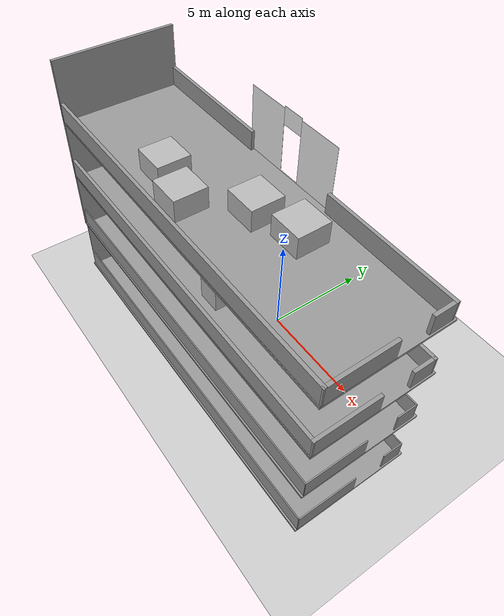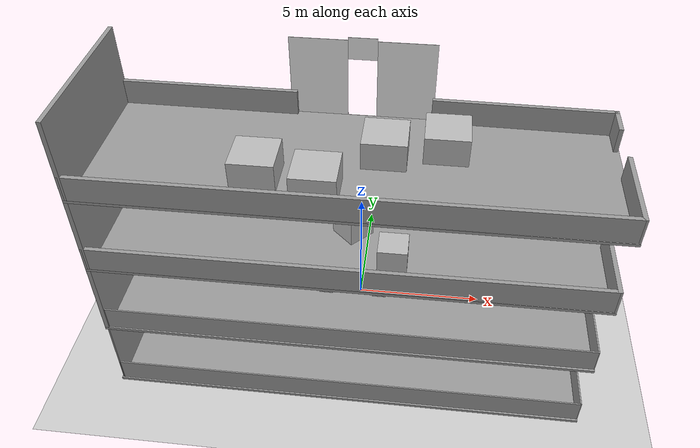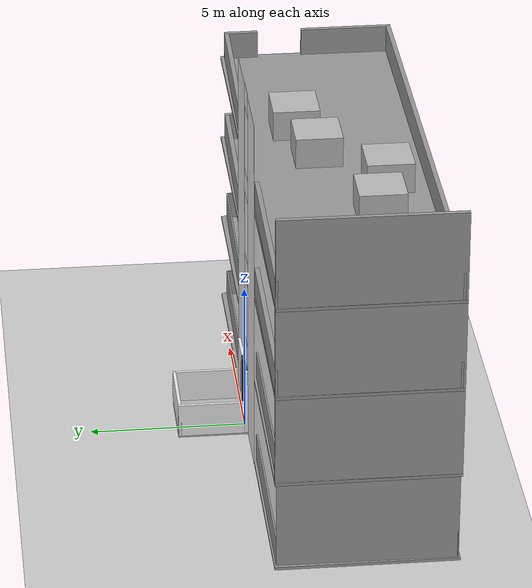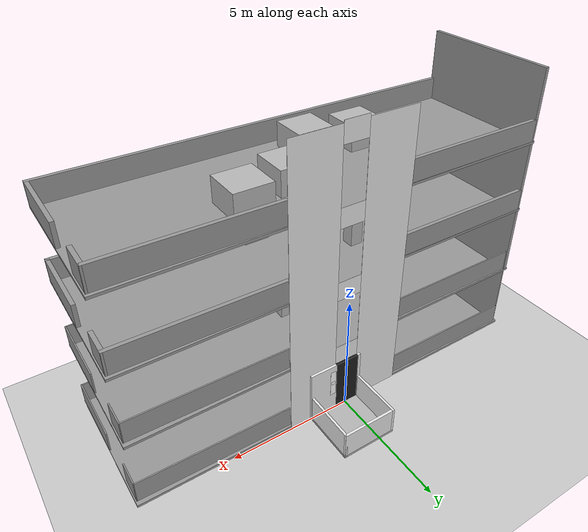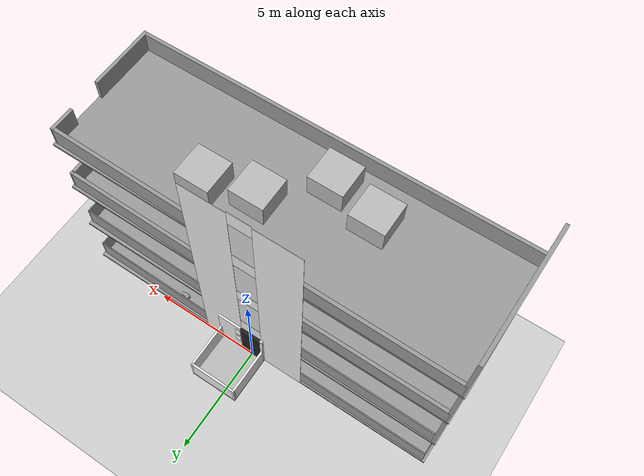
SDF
<sdf version="1.6">
 <world name="default">
  <include><uri>model://ground_plane</uri></include>
  <include><uri>model://sun</uri></include>
  <plugin name="actor_pose_plugin" filename="libActorPosePlugin.so"><update_rate>10.0</update_rate></plugin>
  <include>
   <uri>file:///home/achiraubuntu/navigation_ws/src/gazebo_elevator_plugin/model/multifloor_building</uri>
   <pose>0 -2.90 0 0 0 0</pose>
  </include>
  <include>
   <uri>file:///home/achiraubuntu/navigation_ws/src/gazebo_elevator_plugin/model/objects</uri>
   <pose>0 -2.90 0 0 0 0</pose>
  </include>
  <model name="sliding_boxes">
   <link name="level01_support">
    <pose>0 -0.055 2.7 0 0 0</pose>
    <visual name="support01_visual">
     <geometry><box><size>1.0 0.01 0.8</size></box></geometry>
     <material>
      <script><uri>file://media/materials/scripts/gazebo.material</uri><name>Gazebo/White</name></script>
     </material>
    </visual>
   </link>
   <link name="level02_support">
    <pose>0 -0.055 5.7 0 0 0</pose>
    <visual name="support02_visual">
     <geometry><box><size>1.0 0.01 0.8</size></box></geometry>
     <material>
      <script><uri>file://media/materials/scripts/gazebo.material</uri><name>Gazebo/White</name></script>
     </material>
    </visual>
   </link>
   <link name="level03_support">
    <pose>0 -0.055 8.7 0 0 0</pose>
    <visual name="support03_visual">
     <geometry><box><size>1.0 0.01 0.8</size></box></geometry>
     <material>
      <script><uri>file://media/materials/scripts/gazebo.material</uri><name>Gazebo/White</name></script>
     </material>
    </visual>
   </link>
   <link name="level04_support">
    <pose>0 -0.055 11.7 0 0 0</pose>
    <visual name="support04_visual">
     <geometry><box><size>1.0 0.01 0.8</size></box></geometry>
     <material>
      <script><uri>file://media/materials/scripts/gazebo.material</uri><name>Gazebo/White</name></script>
     </material>
    </visual>
    <collision name="support04_collision"><geometry><box><size>1.0 0.01 0.95</size></box></geometry></collision>
   </link>
   <link name="front_wall_right">
    <pose>1.5 -0.055 6 0 0 0</pose>
    <visual name="front_wall_right_visual">
     <geometry><box><size>2 0.01 12</size></box></geometry>
     <material>
      <script><uri>file://media/materials/scripts/gazebo.material</uri><name>Gazebo/White</name></script>
     </material>
    </visual>
    <collision name="front_wall_right_collision">
     <geometry><box><size>2 0.01 12</size></box></geometry>
    </collision>
   </link>
   <link name="front_wall_left">
    <pose>-1.5 -0.055 6 0 0 0</pose>
    <visual name="front_wall_left_visual">
     <geometry><box><size>2 0.01 12</size></box></geometry>
     <material>
      <script><uri>file://media/materials/scripts/gazebo.material</uri><name>Gazebo/White</name></script>
     </material>
    </visual>
    <collision name="front_wall_left_collision"><geometry><box><size>2 0.01 12</size></box></geometry></collision>
   </link>
   <link name="base"/>
   <joint name="connector" type="fixed"><parent>base</parent><child>Floor_6</child></joint>
   <joint name="joint_front_wall_left" type="fixed">
    <parent>level03_support</parent>
    <child>front_wall_left</child>
   </joint>
   <joint name="joint_front_wall_right" type="fixed">
    <parent>level03_support</parent>
    <child>front_wall_right</child>
   </joint>
   <joint name="joint_level01_support" type="fixed">
    <parent>base</parent>
    <child>level01_support</child>
    <pose>0 0 4.1 0 0 0</pose>
   </joint>
   <joint name="joint_level02_support" type="fixed">
    <parent>base</parent>
    <child>level02_support</child>
    <pose>0 0 7.1 0 0 0</pose>
   </joint>
   <joint name="joint_level03_support" type="fixed">
    <parent>base</parent>
    <child>level03_support</child>
    <pose>0 0 10.1 0 0 0</pose>
   </joint>
   <joint name="joint_level04_support" type="fixed">
    <parent>base</parent>
    <child>level04_support</child>
    <pose>0 0 13.1 0 0 0</pose>
   </joint>
  </model>
  <model name="elevator">
   <pose>0.5 1.08 0.05 0 0 -1.5708</pose>
   <link name="link">
    <inertial><mass>800</mass></inertial>
    <collision name="floor_collision"><geometry><box><size>2.25 2.25 0.1</size></box></geometry></collision>
    <visual name="floor_visual"><geometry><box><size>2.25 2.25 0.1</size></box></geometry></visual>
    <collision name="wall1_collision">
     <pose>1.0745 0.5725 1.125 0 0 0</pose>
     <geometry><box><size>0.1 1.15 2.25</size></box></geometry>
    </collision>
    <visual name="wall1_visual">
     <pose>1.0745 0.5725 1.125 0 0 0</pose>
     <geometry><box><size>0.1 1.15 2.25</size></box></geometry>
     <material><script><name>Gazebo/White</name></script></material>
    </visual>
    <collision name="wall2_collision">
     <pose>1.0745 -1.0625 1.125 0 0 0</pose>
     <geometry><box><size>0.1 0.125 2.25</size></box></geometry>
    </collision>
    <visual name="wall2_visual">
     <pose>1.0745 -1.0625 1.125 0 0 0</pose>
     <geometry><box><size>0.1 0.125 2.25</size></box></geometry>
     <material><script><name>Gazebo/White</name></script></material>
    </visual>
    <collision name="wall_left_collision">
     <pose>0 -1.075 0.5625 0 0 0</pose>
     <geometry><box><size>2.25 0.1 1.125</size></box></geometry>
    </collision>
    <visual name="wall_left_visual">
     <pose>0 -1.075 0.5625 0 0 0</pose>
     <geometry><box><size>2.25 0.1 1.125</size></box></geometry>
     <material><script><name>Gazebo/White</name></script></material>
    </visual>
    <collision name="wall_right_collision">
     <pose>0 1.075 0.5625 0 0 0</pose>
     <geometry><box><size>2.25 0.1 1.125</size></box></geometry>
    </collision>
    <visual name="wall_right_visual">
     <pose>0 1.075 0.5625 0 0 0</pose>
     <geometry><box><size>2.25 0.1 1.125</size></box></geometry>
     <material><script><name>Gazebo/White</name></script></material>
    </visual>
    <collision name="wall_rear_collision">
     <pose>-1.075 0 0.5625 0 0 0</pose>
     <geometry><box><size>0.1 2.25 1.125</size></box></geometry>
    </collision>
    <visual name="wall_rear_visual">
     <pose>-1.075 0 0.5625 0 0 0</pose>
     <geometry><box><size>0.1 2.25 1.125</size></box></geometry>
     <material><script><name>Gazebo/White</name></script></material>
    </visual>
    <visual name="button_panel_floor01_in_visual">
     <pose>1.0225 0.15 1.40 0 0 0</pose>
     <geometry><box><size>0.004 0.25 1.16</size></box></geometry>
     <material>
      <ambient>1 1 1 1</ambient>
      <diffuse>1 1 1 1</diffuse>
      <specular>0.1 0.1 0.1 1</specular>
      <emissive>0.5 0.5 0.5 1</emissive>
      <lighting>1</lighting>
      <script>
       <uri>file:///home/achiraubuntu/navigation_ws/src/gazebo_elevator_plugin/model/moving_joint_model/materials/scripts</uri>
       <uri>file:///home/achiraubuntu/navigation_ws/src/gazebo_elevator_plugin/model/moving_joint_model/materials/textures</uri>
       <name>ButtonPanelFloor02In</name>
      </script>
     </material>
    </visual>
    <visual name="apriltag_elevator_interior">
     <pose>1.0200 0.15 1.40 0 0 0</pose>
     <geometry><box><size>0.001 0.15 0.15</size></box></geometry>
     <material>
      <ambient>1 1 1 1</ambient>
      <diffuse>1 1 1 1</diffuse>
      <specular>0.0 0.0 0.0 1</specular>
      <emissive>0.1 0.1 0.1 1</emissive>
      <lighting>1</lighting>
      <script>
       <uri>file:///home/achiraubuntu/navigation_ws/src/gazebo_elevator_plugin/model/Apriltag36_11_00000/materials/scripts</uri>
       <uri>file:///home/achiraubuntu/navigation_ws/src/gazebo_elevator_plugin/model/Apriltag36_11_00000/materials/textures</uri>
       <name>Apriltag36_11_00000</name>
      </script>
     </material>
    </visual>
   </link>
   <link name="door">
    <pose>1.0745 -0.5 1.125 0 0 0</pose>
    <collision name="collision"><geometry><box><size>0.08 1.0 2.25</size></box></geometry></collision>
    <visual name="visual">
     <geometry><box><size>0.08 1.0 2.25</size></box></geometry>
     <material><script><name>Gazebo/Black</name></script></material>
    </visual>
   </link>
   <joint name="door" type="prismatic">
    <parent>link</parent>
    <child>door</child>
    <axis>
     <xyz>0 1 0</xyz>
     <limit><lower>0</lower><upper>1</upper><effort>10</effort></limit>
     <dynamics><damping>2</damping></dynamics>
    </axis>
   </joint>
   <joint name="lift" type="prismatic">
    <parent>world</parent>
    <child>link</child>
    <axis>
     <xyz>0 0 1</xyz>
     <limit><lower>0</lower><upper>10</upper><effort>100000</effort></limit>
     <dynamics><damping>50</damping></dynamics>
    </axis>
    <physics><ode><implicit_spring_damper>1</implicit_spring_damper></ode></physics>
   </joint>
   <plugin filename="libCustomElevatorPlugin.so" name="custom_elevator_plugin">
    <lift_joint>elevator::lift</lift_joint>
    <door_joint>elevator::door</door_joint>
    <floor_height>3.0</floor_height>
    <floor_offset>0.078</floor_offset>
    <door_wait_time>10</door_wait_time>
    <topic>~/elevator</topic>
   </plugin>
  </model>
  <model name="docking_station">
   <static>1</static>
   <link name="docking_station_base_link">
    <inertial>
     <mass>100</mass>
     <inertia><ixx>1</ixx><ixy>0</ixy><ixz>0</ixz><iyy>1</iyy><iyz>0</iyz><izz>1</izz></inertia>
    </inertial>
    <collision name="docking_station_base_link_collision">
     <geometry>
      <mesh>
       <scale>0.001 0.001 0.001</scale>
       <uri>file:///home/achiraubuntu/navigation_ws/src/smrr_description/meshes/Docking_station_assembly.STL</uri>
      </mesh>
     </geometry>
    </collision>
    <visual name="docking_station_base_link_visual">
     <geometry>
      <mesh>
       <scale>0.001 0.001 0.001</scale>
       <uri>file:///home/achiraubuntu/navigation_ws/src/smrr_description/meshes/Docking_station_assembly.STL</uri>
      </mesh>
     </geometry>
     <material>
      <script><name>Gazebo/Grey</name><uri>file://media/materials/scripts/gazebo.material</uri></script>
     </material>
    </visual>
    <visual name="apriltag_marker">
     <pose>0.091 0.35 -0.018 0 0 1.5708</pose>
     <geometry><box><size>0.2 0.2 0.001</size></box></geometry>
     <material>
      <ambient>1 1 1 1</ambient>
      <diffuse>1 1 1 1</diffuse>
      <specular>0.1 0.1 0.1 1</specular>
      <emissive>0.2 0.2 0.2 1</emissive>
      <lighting>1</lighting>
      <script>
       <uri>file:///home/achiraubuntu/navigation_ws/src/gazebo_elevator_plugin/model/Apriltag36_11_00000/materials/scripts</uri>
       <uri>file:///home/achiraubuntu/navigation_ws/src/gazebo_elevator_plugin/model/Apriltag36_11_00000/materials/textures</uri>
       <name>Apriltag36_11_00000</name>
      </script>
     </material>
    </visual>
   </link>
   <pose>4 -0.4 0.1 1.5708 0 0</pose>
  </model>
  <model name="button_panel_floor01_out">
   <static>true</static>
   <link name="panel_link">
    <pose>-0.625 -0.082 1.40 0 0 0</pose>
    <visual name="panel_visual">
     <geometry><box><size>0.25 0.004 1.16</size></box></geometry>
     <material>
      <ambient>1 1 1 1</ambient>
      <diffuse>1 1 1 1</diffuse>
      <specular>0.1 0.1 0.1 1</specular>
      <emissive>0.5 0.5 0.5 1</emissive>
      <lighting>1</lighting>
      <script>
       <uri>file:///home/achiraubuntu/navigation_ws/src/gazebo_elevator_plugin/model/moving_joint_model/materials/scripts</uri>
       <uri>file:///home/achiraubuntu/navigation_ws/src/gazebo_elevator_plugin/model/moving_joint_model/materials/textures</uri>
       <name>ButtonPanelFloor01Out</name>
      </script>
     </material>
    </visual>
   </link>
  </model>
 </world>
</sdf>

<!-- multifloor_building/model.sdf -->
<sdf version='1.7'>
  <model name='multifloor_building'>
    <pose>-0.127322 -2.87339 0 0 -0 0</pose>
    <link name='Floor_0'>
      <collision name='Floor_0_Collision'>
        <geometry>
          <box>
            <size>17.4048 5.71356 0.1</size>
          </box>
        </geometry>
        <pose>0 0 0.05 0 -0 0</pose>
      </collision>
      <visual name='Floor_0_Visual'>
        <pose>0 0 0.05 0 -0 0</pose>
        <geometry>
          <box>
            <size>17.4048 5.71356 0.1</size>
          </box>
        </geometry>
        <material>
          <script>
            <uri>file://media/materials/scripts/gazebo.material</uri>
            <name>Gazebo/Grey</name>
          </script>
          <ambient>1 1 1 1</ambient>
        </material>
        <meta>
          <layer>0</layer>
        </meta>
      </visual>
      <pose>-0.025045 -0.016611 0 0 -0 0</pose>
    </link>
    <link name='Floor_6'>
      <collision name='Floor_6_Collision'>
        <geometry>
          <box>
            <size>17.4048 5.71356 0.1</size>
          </box>
        </geometry>
        <pose>0 0 0.05 0 -0 0</pose>
      </collision>
      <visual name='Floor_6_Visual'>
        <pose>0 0 0.05 0 -0 0</pose>
        <geometry>
          <box>
            <size>17.4048 5.71356 0.1</size>
          </box>
        </geometry>
        <material>
          <script>
            <uri>file://media/materials/scripts/gazebo.material</uri>
            <name>Gazebo/Grey</name>
          </script>
          <ambient>1 1 1 1</ambient>
        </material>
        <meta>
          <layer>1</layer>
        </meta>
      </visual>
      <pose>-0.025045 -0.016611 3.0 0 -0 0</pose>
    </link>
    <link name='Floor_8'>
      <collision name='Floor_8_Collision'>
        <geometry>
          <box>
            <size>17.4549 5.71356 0.1</size>
          </box>
        </geometry>
        <pose>0 0 0.05 0 -0 0</pose>
      </collision>
      <visual name='Floor_8_Visual'>
        <pose>0 0 0.05 0 -0 0</pose>
        <geometry>
          <box>
            <size>17.4549 5.71356 0.1</size>
          </box>
        </geometry>
        <material>
          <script>
            <uri>file://media/materials/scripts/gazebo.material</uri>
            <name>Gazebo/Grey</name>
          </script>
          <ambient>1 1 1 1</ambient>
        </material>
        <meta>
          <layer>2</layer>
        </meta>
      </visual>
      <pose>-0 -0.016611 6.0 0 -0 0</pose>
    </link>
    <link name='Floor_9'>
      <collision name='Floor_9_Collision'>
        <geometry>
          <box>
            <size>17.4549 5.71356 0.1</size>
          </box>
        </geometry>
        <pose>0 0 0.05 0 -0 0</pose>
      </collision>
      <visual name='Floor_9_Visual'>
        <pose>0 0 0.05 0 -0 0</pose>
        <geometry>
          <box>
            <size>17.4549 5.71356 0.1</size>
          </box>
        </geometry>
        <material>
          <script>
            <uri>file://media/materials/scripts/gazebo.material</uri>
            <name>Gazebo/Grey</name>
          </script>
          <ambient>1 1 1 1</ambient>
        </material>
        <meta>
          <layer>3</layer>
        </meta>
      </visual>
      <pose>-0 -0.016611 9.0 0 -0 0</pose>
    </link>
    <link name='Wall_11'>
      <collision name='Wall_11_Collision'>
        <geometry>
          <box>
            <size>6.1448 0.05 1</size>
          </box>
        </geometry>
        <pose>0 0 0.5 0 -0 0</pose>
      </collision>
      <visual name='Wall_11_Visual'>
        <pose>0 0 0.5 0 -0 0</pose>
        <geometry>
          <box>
            <size>6.1448 0.05 1</size>
          </box>
        </geometry>
        <material>
          <script>
            <uri>file://media/materials/scripts/gazebo.material</uri>
            <name>Gazebo/Grey</name>
          </script>
          <ambient>1 1 1 1</ambient>
        </material>
        <meta>
          <layer>0</layer>
        </meta>
      </visual>
      <pose>5.55323 2.68693 0 0 -0 3.1273</pose>
    </link>
    <link name='Wall_13'>
      <collision name='Wall_13_Collision'>
        <geometry>
          <box>
            <size>2.9 0.05 1</size>
          </box>
        </geometry>
        <pose>0 0 0.5 0 -0 0</pose>
      </collision>
      <visual name='Wall_13_Visual'>
        <pose>0 0 0.5 0 -0 0</pose>
        <geometry>
          <box>
            <size>2.9 0.05 1</size>
          </box>
        </geometry>
        <material>
          <script>
            <uri>file://media/materials/scripts/gazebo.material</uri>
            <name>Gazebo/Grey</name>
          </script>
          <ambient>1 1 1 1</ambient>
        </material>
        <meta>
          <layer>0</layer>
        </meta>
      </visual>
      <pose>8.65232 -1.34161 0 0 -0 1.5708</pose>
    </link>
    <link name='Wall_15'>
      <collision name='Wall_15_Collision'>
        <geometry>
          <box>
            <size>1 0.05 1</size>
          </box>
        </geometry>
        <pose>0 0 0.5 0 -0 0</pose>
      </collision>
      <visual name='Wall_15_Visual'>
        <pose>0 0 0.5 0 -0 0</pose>
        <geometry>
          <box>
            <size>1 0.05 1</size>
          </box>
        </geometry>
        <material>
          <script>
            <uri>file://media/materials/scripts/gazebo.material</uri>
            <name>Gazebo/Grey</name>
          </script>
          <ambient>1 1 1 1</ambient>
        </material>
        <meta>
          <layer>0</layer>
        </meta>
      </visual>
      <pose>8.60032 2.16839 0 0 -0 -1.5708</pose>
    </link>
    <link name='Wall_5'>
      <collision name='Wall_5_Collision'>
        <geometry>
          <box>
            <size>6.28057 0.05 1</size>
          </box>
        </geometry>
        <pose>0 0 0.5 0 -0 0</pose>
      </collision>
      <visual name='Wall_5_Visual'>
        <pose>0 0 0.5 0 -0 0</pose>
        <geometry>
          <box>
            <size>6.28057 0.05 1</size>
          </box>
        </geometry>
        <material>
          <script>
            <uri>file://media/materials/scripts/gazebo.material</uri>
            <name>Gazebo/Grey</name>
          </script>
          <ambient>1 1 1 1</ambient>
        </material>
        <meta>
          <layer>0</layer>
        </meta>
      </visual>
      <pose>-5.45879 2.74982 0 0 -0 3.13686</pose>
    </link>
    <link name='Wall_53'>
      <collision name='Wall_53_Collision'>
        <geometry>
          <box>
            <size>6.30021 0.05 1</size>
          </box>
        </geometry>
        <pose>0 0 0.5 0 -0 0</pose>
      </collision>
      <visual name='Wall_53_Visual'>
        <pose>0 0 0.5 0 -0 0</pose>
        <geometry>
          <box>
            <size>6.30021 0.05 1</size>
          </box>
        </geometry>
        <material>
          <script>
            <uri>file://media/materials/scripts/gazebo.material</uri>
            <name>Gazebo/Grey</name>
          </script>
          <ambient>1 1 1 1</ambient>
        </material>
        <meta>
          <layer>1</layer>
        </meta>
      </visual>
      <pose>-5.46861 2.74973 3.0 0 -0 3.1369</pose>
    </link>
    <link name='Wall_54'>
      <collision name='Wall_54_Collision'>
        <geometry>
          <box>
            <size>5.7123 0.15 3</size>
          </box>
        </geometry>
        <pose>0 0 1.5 0 -0 0</pose>
      </collision>
      <visual name='Wall_54_Visual'>
        <pose>0 0 1.5 0 -0 0</pose>
        <geometry>
          <box>
            <size>5.7123 0.15 3</size>
          </box>
        </geometry>
        <material>
          <script>
            <uri>file://media/materials/scripts/gazebo.material</uri>
            <name>Gazebo/Grey</name>
          </script>
          <ambient>1 1 1 1</ambient>
        </material>
        <meta>
          <layer>1</layer>
        </meta>
      </visual>
      <pose>-8.62268 -0.016611 3.0 0 -0 -1.58122</pose>
    </link>
    <link name='Wall_55'>
      <collision name='Wall_55_Collision'>
        <geometry>
          <box>
            <size>17.354 0.05 1</size>
          </box>
        </geometry>
        <pose>0 0 0.5 0 -0 0</pose>
      </collision>
      <visual name='Wall_55_Visual'>
        <pose>0 0 0.5 0 -0 0</pose>
        <geometry>
          <box>
            <size>17.354 0.05 1</size>
          </box>
        </geometry>
        <material>
          <script>
            <uri>file://media/materials/scripts/gazebo.material</uri>
            <name>Gazebo/Grey</name>
          </script>
          <ambient>1 1 1 1</ambient>
        </material>
        <meta>
          <layer>1</layer>
        </meta>
      </visual>
      <pose>0.000322 -2.78211 3.0 0 -0 0.001791</pose>
    </link>
    <link name='Wall_56'>
      <collision name='Wall_56_Collision'>
        <geometry>
          <box>
            <size>6.1448 0.05 1</size>
          </box>
        </geometry>
        <pose>0 0 0.5 0 -0 0</pose>
      </collision>
      <visual name='Wall_56_Visual'>
        <pose>0 0 0.5 0 -0 0</pose>
        <geometry>
          <box>
            <size>6.1448 0.05 1</size>
          </box>
        </geometry>
        <material>
          <script>
            <uri>file://media/materials/scripts/gazebo.material</uri>
            <name>Gazebo/Grey</name>
          </script>
          <ambient>1 1 1 1</ambient>
        </material>
        <meta>
          <layer>1</layer>
        </meta>
      </visual>
      <pose>5.55323 2.68693 3.0 0 -0 3.1273</pose>
    </link>
    <link name='Wall_57'>
      <collision name='Wall_57_Collision'>
        <geometry>
          <box>
            <size>2.9 0.05 1</size>
          </box>
        </geometry>
        <pose>0 0 0.5 0 -0 0</pose>
      </collision>
      <visual name='Wall_57_Visual'>
        <pose>0 0 0.5 0 -0 0</pose>
        <geometry>
          <box>
            <size>2.9 0.05 1</size>
          </box>
        </geometry>
        <material>
          <script>
            <uri>file://media/materials/scripts/gazebo.material</uri>
            <name>Gazebo/Grey</name>
          </script>
          <ambient>1 1 1 1</ambient>
        </material>
        <meta>
          <layer>1</layer>
        </meta>
      </visual>
      <pose>8.65232 -1.34161 3.0 0 -0 1.5708</pose>
    </link>
    <link name='Wall_58'>
      <collision name='Wall_58_Collision'>
        <geometry>
          <box>
            <size>1 0.05 1</size>
          </box>
        </geometry>
        <pose>0 0 0.5 0 -0 0</pose>
      </collision>
      <visual name='Wall_58_Visual'>
        <pose>0 0 0.5 0 -0 0</pose>
        <geometry>
          <box>
            <size>1 0.05 1</size>
          </box>
        </geometry>
        <material>
          <script>
            <uri>file://media/materials/scripts/gazebo.material</uri>
            <name>Gazebo/Grey</name>
          </script>
          <ambient>1 1 1 1</ambient>
        </material>
        <meta>
          <layer>1</layer>
        </meta>
      </visual>
      <pose>8.60032 2.16839 3.0 0 -0 -1.5708</pose>
    </link>
    <link name='Wall_6'>
      <collision name='Wall_6_Collision'>
        <geometry>
          <box>
            <size>5.61248 0.05 3.0</size>
          </box>
        </geometry>
        <pose>0 0 1.5 0 -0 0</pose>
      </collision>
      <visual name='Wall_6_Visual'>
        <pose>0 0 1.5 0 -0 0</pose>
        <geometry>
          <box>
            <size>5.61248 0.05 3.0</size>
          </box>
        </geometry>
        <material>
          <script>
            <uri>file://media/materials/scripts/gazebo.material</uri>
            <name>Gazebo/Grey</name>
          </script>
          <ambient>1 1 1 1</ambient>
        </material>
        <meta>
          <layer>0</layer>
        </meta>
      </visual>
      <pose>-8.62292 -0.01652 0 0 -0 -1.58114</pose>
    </link>
    <link name='Wall_65'>
      <collision name='Wall_65_Collision'>
        <geometry>
          <box>
            <size>6.40021 0.15 1</size>
          </box>
        </geometry>
        <pose>0 0 0.5 0 -0 0</pose>
      </collision>
      <visual name='Wall_65_Visual'>
        <pose>0 0 0.5 0 -0 0</pose>
        <geometry>
          <box>
            <size>6.40021 0.15 1</size>
          </box>
        </geometry>
        <material>
          <script>
            <uri>file://media/materials/scripts/gazebo.material</uri>
            <name>Gazebo/Grey</name>
          </script>
          <ambient>1 1 1 1</ambient>
        </material>
        <meta>
          <layer>2</layer>
        </meta>
      </visual>
      <pose>-5.46861 2.74973 6.0 0 -0 3.1369</pose>
    </link>
    <link name='Wall_66'>
      <collision name='Wall_66_Collision'>
        <geometry>
          <box>
            <size>5.7123 0.15 3</size>
          </box>
        </geometry>
        <pose>0 0 1.5 0 -0 0</pose>
      </collision>
      <visual name='Wall_66_Visual'>
        <pose>0 0 1.5 0 -0 0</pose>
        <geometry>
          <box>
            <size>5.7123 0.15 3</size>
          </box>
        </geometry>
        <material>
          <script>
            <uri>file://media/materials/scripts/gazebo.material</uri>
            <name>Gazebo/Grey</name>
          </script>
          <ambient>1 1 1 1</ambient>
        </material>
        <meta>
          <layer>2</layer>
        </meta>
      </visual>
      <pose>-8.62268 -0.016611 6.0 0 -0 -1.58122</pose>
    </link>
    <link name='Wall_67'>
      <collision name='Wall_67_Collision'>
        <geometry>
          <box>
            <size>17.454 0.15 1</size>
          </box>
        </geometry>
        <pose>0 0 0.5 0 -0 0</pose>
      </collision>
      <visual name='Wall_67_Visual'>
        <pose>0 0 0.5 0 -0 0</pose>
        <geometry>
          <box>
            <size>17.454 0.15 1</size>
          </box>
        </geometry>
        <material>
          <script>
            <uri>file://media/materials/scripts/gazebo.material</uri>
            <name>Gazebo/Grey</name>
          </script>
          <ambient>1 1 1 1</ambient>
        </material>
        <meta>
          <layer>2</layer>
        </meta>
      </visual>
      <pose>0.000322 -2.78211 6.0 0 -0 0.001791</pose>
    </link>
    <link name='Wall_68'>
      <collision name='Wall_68_Collision'>
        <geometry>
          <box>
            <size>6.2448 0.15 1</size>
          </box>
        </geometry>
        <pose>0 0 0.5 0 -0 0</pose>
      </collision>
      <visual name='Wall_68_Visual'>
        <pose>0 0 0.5 0 -0 0</pose>
        <geometry>
          <box>
            <size>6.2448 0.15 1</size>
          </box>
        </geometry>
        <material>
          <script>
            <uri>file://media/materials/scripts/gazebo.material</uri>
            <name>Gazebo/Grey</name>
          </script>
          <ambient>1 1 1 1</ambient>
        </material>
        <meta>
          <layer>2</layer>
        </meta>
      </visual>
      <pose>5.55323 2.68693 6.0 0 -0 3.1273</pose>
    </link>
    <link name='Wall_69'>
      <collision name='Wall_69_Collision'>
        <geometry>
          <box>
            <size>3 0.15 1</size>
          </box>
        </geometry>
        <pose>0 0 0.5 0 -0 0</pose>
      </collision>
      <visual name='Wall_69_Visual'>
        <pose>0 0 0.5 0 -0 0</pose>
        <geometry>
          <box>
            <size>3 0.15 1</size>
          </box>
        </geometry>
        <material>
          <script>
            <uri>file://media/materials/scripts/gazebo.material</uri>
            <name>Gazebo/Grey</name>
          </script>
          <ambient>1 1 1 1</ambient>
        </material>
        <meta>
          <layer>2</layer>
        </meta>
      </visual>
      <pose>8.65232 -1.34161 6.0 0 -0 1.5708</pose>
    </link>
    <link name='Wall_7'>
      <collision name='Wall_7_Collision'>
        <geometry>
          <box>
            <size>17.354 0.05 1</size>
          </box>
        </geometry>
        <pose>0 0 0.5 0 -0 0</pose>
      </collision>
      <visual name='Wall_7_Visual'>
        <pose>0 0 0.5 0 -0 0</pose>
        <geometry>
          <box>
            <size>17.354 0.05 1</size>
          </box>
        </geometry>
        <material>
          <script>
            <uri>file://media/materials/scripts/gazebo.material</uri>
            <name>Gazebo/Grey</name>
          </script>
          <ambient>1 1 1 1</ambient>
        </material>
        <meta>
          <layer>0</layer>
        </meta>
      </visual>
      <pose>0.000322 -2.78211 0 0 -0 0.001791</pose>
    </link>
    <link name='Wall_70'>
      <collision name='Wall_70_Collision'>
        <geometry>
          <box>
            <size>1.1 0.15 1</size>
          </box>
        </geometry>
        <pose>0 0 0.5 0 -0 0</pose>
      </collision>
      <visual name='Wall_70_Visual'>
        <pose>0 0 0.5 0 -0 0</pose>
        <geometry>
          <box>
            <size>1.1 0.15 1</size>
          </box>
        </geometry>
        <material>
          <script>
            <uri>file://media/materials/scripts/gazebo.material</uri>
            <name>Gazebo/Grey</name>
          </script>
          <ambient>1 1 1 1</ambient>
        </material>
        <meta>
          <layer>2</layer>
        </meta>
      </visual>
      <pose>8.60032 2.16839 6.0 0 -0 -1.5708</pose>
    </link>
    <link name='Wall_71'>
      <collision name='Wall_71_Collision'>
        <geometry>
          <box>
            <size>6.40021 0.15 1</size>
          </box>
        </geometry>
        <pose>0 0 0.5 0 -0 0</pose>
      </collision>
      <visual name='Wall_71_Visual'>
        <pose>0 0 0.5 0 -0 0</pose>
        <geometry>
          <box>
            <size>6.40021 0.15 1</size>
          </box>
        </geometry>
        <material>
          <script>
            <uri>file://media/materials/scripts/gazebo.material</uri>
            <name>Gazebo/Grey</name>
          </script>
          <ambient>1 1 1 1</ambient>
        </material>
        <meta>
          <layer>3</layer>
        </meta>
      </visual>
      <pose>-5.46861 2.74973 9.0 0 -0 3.1369</pose>
    </link>
    <link name='Wall_72'>
      <collision name='Wall_72_Collision'>
        <geometry>
          <box>
            <size>5.7123 0.15 3</size>
          </box>
        </geometry>
        <pose>0 0 1.5 0 -0 0</pose>
      </collision>
      <visual name='Wall_72_Visual'>
        <pose>0 0 1.5 0 -0 0</pose>
        <geometry>
          <box>
            <size>5.7123 0.15 3</size>
          </box>
        </geometry>
        <material>
          <script>
            <uri>file://media/materials/scripts/gazebo.material</uri>
            <name>Gazebo/Grey</name>
          </script>
          <ambient>1 1 1 1</ambient>
        </material>
        <meta>
          <layer>3</layer>
        </meta>
      </visual>
      <pose>-8.62268 -0.016611 9.0 0 -0 -1.58122</pose>
    </link>
    <link name='Wall_73'>
      <collision name='Wall_73_Collision'>
        <geometry>
          <box>
            <size>17.454 0.15 1</size>
          </box>
        </geometry>
        <pose>0 0 0.5 0 -0 0</pose>
      </collision>
      <visual name='Wall_73_Visual'>
        <pose>0 0 0.5 0 -0 0</pose>
        <geometry>
          <box>
            <size>17.454 0.15 1</size>
          </box>
        </geometry>
        <material>
          <script>
            <uri>file://media/materials/scripts/gazebo.material</uri>
            <name>Gazebo/Grey</name>
          </script>
          <ambient>1 1 1 1</ambient>
        </material>
        <meta>
          <layer>3</layer>
        </meta>
      </visual>
      <pose>0.000322 -2.78211 9.0 0 -0 0.001791</pose>
    </link>
    <link name='Wall_74'>
      <collision name='Wall_74_Collision'>
        <geometry>
          <box>
            <size>6.2448 0.15 1</size>
          </box>
        </geometry>
        <pose>0 0 0.5 0 -0 0</pose>
      </collision>
      <visual name='Wall_74_Visual'>
        <pose>0 0 0.5 0 -0 0</pose>
        <geometry>
          <box>
            <size>6.2448 0.15 1</size>
          </box>
        </geometry>
        <material>
          <script>
            <uri>file://media/materials/scripts/gazebo.material</uri>
            <name>Gazebo/Grey</name>
          </script>
          <ambient>1 1 1 1</ambient>
        </material>
        <meta>
          <layer>3</layer>
        </meta>
      </visual>
      <pose>5.55323 2.68693 9.0 0 -0 3.1273</pose>
    </link>
    <link name='Wall_75'>
      <collision name='Wall_75_Collision'>
        <geometry>
          <box>
            <size>3 0.15 1</size>
          </box>
        </geometry>
        <pose>0 0 0.5 0 -0 0</pose>
      </collision>
      <visual name='Wall_75_Visual'>
        <pose>0 0 0.5 0 -0 0</pose>
        <geometry>
          <box>
            <size>3 0.15 1</size>
          </box>
        </geometry>
        <material>
          <script>
            <uri>file://media/materials/scripts/gazebo.material</uri>
            <name>Gazebo/Grey</name>
          </script>
          <ambient>1 1 1 1</ambient>
        </material>
        <meta>
          <layer>3</layer>
        </meta>
      </visual>
      <pose>8.65232 -1.34161 9.0 0 -0 1.5708</pose>
    </link>
    <link name='Wall_76'>
      <collision name='Wall_76_Collision'>
        <geometry>
          <box>
            <size>1.1 0.15 1</size>
          </box>
        </geometry>
        <pose>0 0 0.5 0 -0 0</pose>
      </collision>
      <visual name='Wall_76_Visual'>
        <pose>0 0 0.5 0 -0 0</pose>
        <geometry>
          <box>
            <size>1.1 0.15 1</size>
          </box>
        </geometry>
        <material>
          <script>
            <uri>file://media/materials/scripts/gazebo.material</uri>
            <name>Gazebo/Grey</name>
          </script>
          <ambient>1 1 1 1</ambient>
        </material>
        <meta>
          <layer>3</layer>
        </meta>
      </visual>
      <pose>8.60032 2.16839 9.0 0 -0 -1.5708</pose>
    </link>
    <static>1</static>
  </model>
</sdf>

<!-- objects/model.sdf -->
<sdf version='1.7'>
  <model name='objects'>
    <!-- Link: cube001 -->
    <link name="cube001">
      <visual name="cube001_visual">
        <pose>0.0 0.0 0.6 0.0 0.0 0.0</pose>
        <geometry>
          <box>
            <size>0.5 0.5 1.0</size>
          </box>
        </geometry>
      </visual>
      <collision name="cube001_collision">
        <pose>0.0 0.0 0.6 0.0 0.0 0.0</pose>
        <geometry>
          <box>
            <size>0.5 0.5 1.0</size>
          </box>
        </geometry>
      </collision>
    </link>
    <joint name="joint_cube001" type="fixed">
      <parent>world</parent>
      <child>cube001</child>
    </joint>

    <!-- Link: cube002 -->
    <link name="cube002">
      <visual name="cube002_visual">
        <pose>-1.0 0.0 3.6 0.0 0.0 0.0</pose>
        <geometry>
          <box>
            <size>0.5 0.5 1.0</size>
          </box>
        </geometry>
      </visual>
      <collision name="cube002_collision">
        <pose>-1.0 0.0 3.6 0.0 0.0 0.0</pose>
        <geometry>
          <box>
            <size>0.5 0.5 1.0</size>
          </box>
        </geometry>
      </collision>
    </link>
    <joint name="joint_cube002" type="fixed">
      <parent>world</parent>
      <child>cube002</child>
    </joint>

    <!-- Link: cube003 -->
    <link name="cube003">
      <visual name="cube003_visual">
        <pose>1.0 0.0 3.6 0.0 0.0 0.0</pose>
        <geometry>
          <box>
            <size>0.5 0.5 1.0</size>
          </box>
        </geometry>
      </visual>
      <collision name="cube003_collision">
        <pose>1.0 0.0 3.6 0.0 0.0 0.0</pose>
        <geometry>
          <box>
            <size>0.5 0.5 1.0</size>
          </box>
        </geometry>
      </collision>
    </link>
    <joint name="joint_cube003" type="fixed">
      <parent>world</parent>
      <child>cube003</child>
    </joint>

    <!-- Link: cube004 -->
    <link name="cube004">
      <visual name="cube004_visual">
        <pose>0.0 0.0 6.6 0.0 0.0 0.8</pose>
        <geometry>
          <box>
            <size>1.0 1.0 1.0</size>
          </box>
        </geometry>
      </visual>
      <collision name="cube004_collision">
        <pose>0.0 0.0 6.6 0.0 0.0 0.8</pose>
        <geometry>
          <box>
            <size>1.0 1.0 1.0</size>
          </box>
        </geometry>
      </collision>
    </link>
    <joint name="joint_cube004" type="fixed">
      <parent>world</parent>
      <child>cube004</child>
    </joint>

    <!-- Link: cube005 -->
    <link name="cube005">
      <visual name="cube005_visual">
        <pose>-1.5 1.0 6.6 0.0 0.0 0.0</pose>
        <geometry>
          <box>
            <size>0.5 0.5 1.0</size>
          </box>
        </geometry>
      </visual>
      <collision name="cube005_collision">
        <pose>-1.5 1.0 6.6 0.0 0.0 0.0</pose>
        <geometry>
          <box>
            <size>0.5 0.5 1.0</size>
          </box>
        </geometry>
      </collision>
    </link>
    <joint name="joint_cube005" type="fixed">
      <parent>world</parent>
      <child>cube005</child>
    </joint>

    <!-- Link: cube006 -->
    <link name="cube006">
      <visual name="cube006_visual">
        <pose>1.5 -1.5 6.6 0.0 0.0 0.0</pose>
        <geometry>
          <box>
            <size>1.0 1.0 1.0</size>
          </box>
        </geometry>
      </visual>
      <collision name="cube006_collision">
        <pose>1.5 -1.5 6.6 0.0 0.0 0.0</pose>
        <geometry>
          <box>
            <size>1.0 1.0 1.0</size>
          </box>
        </geometry>
      </collision>
    </link>
    <joint name="joint_cube006" type="fixed">
      <parent>world</parent>
      <child>cube006</child>
    </joint>

    <!-- Link: cube007 -->
    <link name="cube007">
      <visual name="cube007_visual">
        <pose>-1.0 -1.5 9.6 0.0 0.0 0.0</pose>
        <geometry>
          <box>
            <size>1.5 1.5 1.0</size>
          </box>
        </geometry>
      </visual>
      <collision name="cube007_collision">
        <pose>-1.0 -1.5 9.6 0.0 0.0 0.0</pose>
        <geometry>
          <box>
            <size>1.5 1.5 1.0</size>
          </box>
        </geometry>
      </collision>
    </link>
    <joint name="joint_cube007" type="fixed">
      <parent>world</parent>
      <child>cube007</child>
    </joint>

    <!-- Link: cube008 -->
    <link name="cube008">
      <visual name="cube008_visual">
        <pose>1.0 0.5 9.6 0.0 0.0 0.0</pose>
        <geometry>
          <box>
            <size>1.5 1.5 1.0</size>
          </box>
        </geometry>
      </visual>
      <collision name="cube008_collision">
        <pose>1.0 0.5 9.6 0.0 0.0 0.0</pose>
        <geometry>
          <box>
            <size>1.5 1.5 1.0</size>
          </box>
        </geometry>
      </collision>
    </link>
    <joint name="joint_cube008" type="fixed">
      <parent>world</parent>
      <child>cube008</child>
    </joint>

    <!-- Link: cube009 -->
    <link name="cube009">
      <visual name="cube009_visual">
        <pose>-3.0 -1.0 9.6 0.0 0.0 0.0</pose>
        <geometry>
          <box>
            <size>1.5 1.5 1.0</size>
          </box>
        </geometry>
      </visual>
      <collision name="cube009_collision">
        <pose>-3.0 -1.0 9.6 0.0 0.0 0.0</pose>
        <geometry>
          <box>
            <size>1.5 1.5 1.0</size>
          </box>
        </geometry>
      </collision>
    </link>
    <joint name="joint_cube009" type="fixed">
      <parent>world</parent>
      <child>cube009</child>
    </joint>

    <!-- Link: cube010 -->
    <link name="cube010">
      <visual name="cube010_visual">
        <pose>3.0 1.0 9.6 0.0 0.0 0.0</pose>
        <geometry>
          <box>
            <size>1.5 1.5 1.0</size>
          </box>
        </geometry>
      </visual>
      <collision name="cube010_collision">
        <pose>3.0 1.0 9.6 0.0 0.0 0.0</pose>
        <geometry>
          <box>
            <size>1.5 1.5 1.0</size>
          </box>
        </geometry>
      </collision>
    </link>
    <joint name="joint_cube010" type="fixed">
      <parent>world</parent>
      <child>cube010</child>
    </joint>

  </model>
</sdf>
